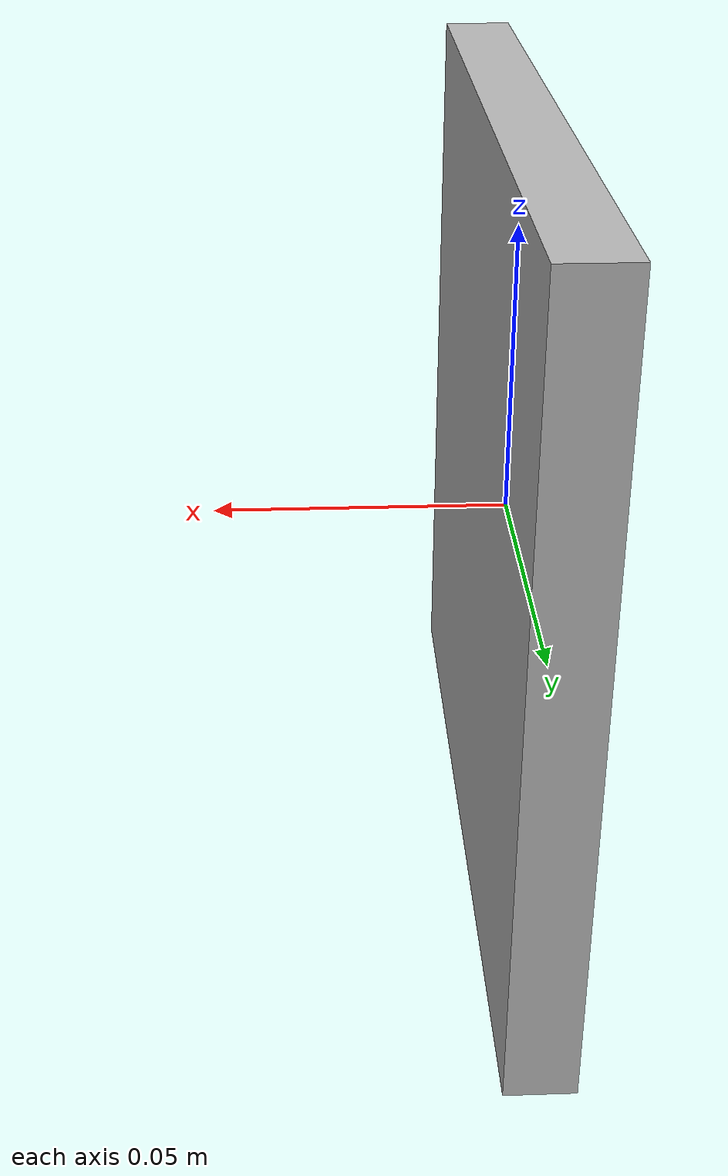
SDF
<?xml version="1.0" ?>
<sdf version='1.5'>
  <model name='radiation_surface'>
    <static>true</static>
    <link name='body'>
      <visual name='visual'>
      <pose>0 0 0 0 0 0</pose>
        <geometry>
        <mesh>
          <uri>file://radiation_surface/meshes/rad10.dae</uri>
        </mesh>
        </geometry>
      </visual>
      <collision name="collision1">
    <geometry>
      <mesh>
          <uri>file://radiation_surface/meshes/rad10.dae</uri>
      </mesh>
    </geometry>
    </collision>
  </link>
</model>
</sdf>
